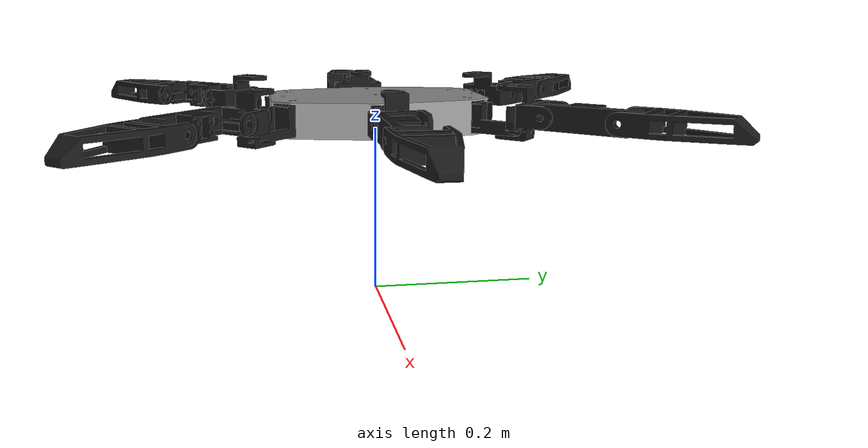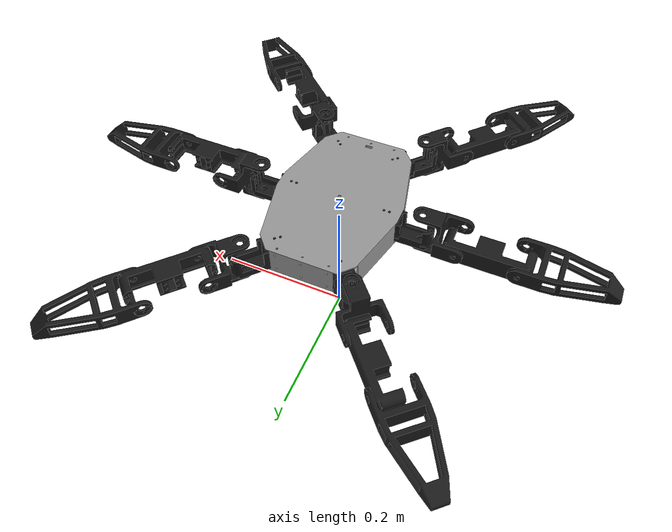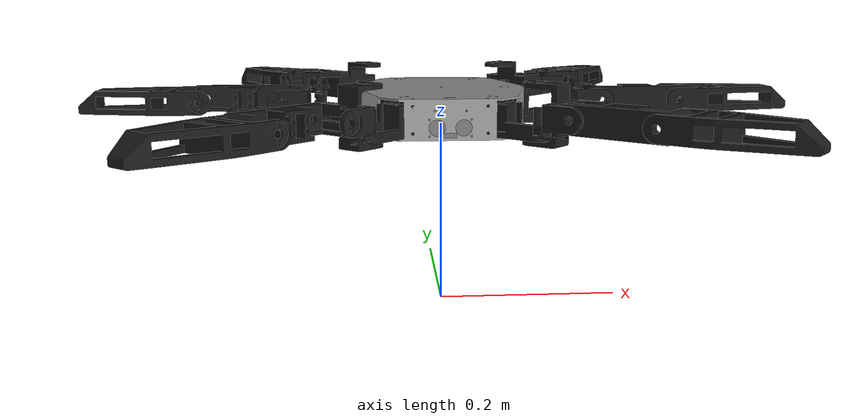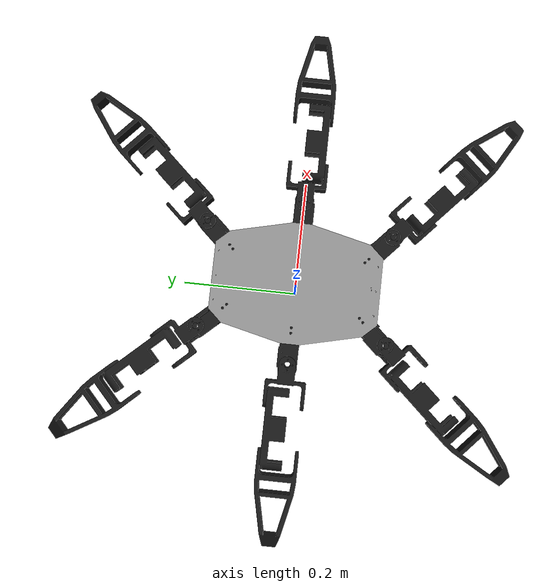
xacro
<?xml version="1.0"?>

<robot xmlns:xacro="http://www.ros.org/wiki/xacro" name="spider">

<!-- Constants for robot dimensions -->
<xacro:property name="PI" value="3.1415926535897931"/>
<xacro:property name="scale" value="0.001" />
<xacro:property name="d_x_boite_patte_centre" value="${61.49*scale}" />
<xacro:property name="r_z_boite_patte_ext" value="${47.6*PI/180}" />
<xacro:property name="d_x_boite_patte_ext" value="${38.208*scale}" />
<xacro:property name="d_y_boite_patte_ext" value="${95.665*scale}" />
<xacro:property name="hauteur" value="200"/>

<xacro:property name="d_A_B" value="${58.67*scale}" />
<xacro:property name="d_B_C" value="${53.0*scale}" />
<xacro:property name="d_C_D" value="${84.16*scale}" />

<xacro:macro name="patte" params="nb_patte pos_x pos_y rot_z color">
  <xacro:une_partie_patte name="patte_${nb_patte}A" mesh_name="A" d_z="0" r_z="${PI/2}" col="0.05" color="${color}"/>
  <xacro:joint_fix name1="base_link" name2="patte_${nb_patte}A" d_x="${pos_x}" d_y="${pos_y}" d_z="${hauteur*scale}" r_x="0" r_y="0" r_z="${rot_z}"/>
  <xacro:une_partie_patte name="patte_${nb_patte}B" mesh_name="B" d_z="0" r_z="${PI/2}" col="0.05" color="${color}"/>
  <xacro:joint_rot name1="patte_${nb_patte}A" name2="patte_${nb_patte}B" d_x="${d_A_B}" d_y="0" d_z="0" r_x="0" r_y="0" r_z="0" axe_y="0" axe_z="1"/>

  <xacro:une_partie_patte name="patte_${nb_patte}C" mesh_name="C" d_z="${-27.44*scale}" r_z="${PI/2}" col="0.05" color="${color}"/>
  <xacro:joint_rot name1="patte_${nb_patte}B" name2="patte_${nb_patte}C" d_x="${d_B_C}" d_y="0" d_z="${scale*27.44}" r_x="0" r_y="0" r_z="0" axe_y="-1" axe_z="0"/>

  <xacro:une_partie_patte name="patte_${nb_patte}D" mesh_name="D" d_z="${-27.44*scale}" r_z="${PI/2}" col="0.05" color="${color}"/>
  <xacro:joint_rot name1="patte_${nb_patte}C" name2="patte_${nb_patte}D" d_x="${d_C_D}" d_y="0" d_z="0" r_x="0" r_y="0" r_z="0" axe_y="-1" axe_z="0"/>

</xacro:macro>

<xacro:macro name="une_partie_patte" params="name mesh_name d_z r_z col color">
  <link name="${name}">
      <collision>
        <origin xyz="0 0 ${d_z}" rpy="0 0 ${r_z}"/>
        <geometry>
          <mesh filename="package://description_kumo/meshes/${mesh_name}.obj" scale="${scale} ${scale} ${scale}"/>
        </geometry>
      </collision>

      <visual>
        <origin xyz="0 0 ${d_z}" rpy="0 0 ${r_z}"/>
        <geometry>
          <mesh filename="package://description_kumo/meshes/${mesh_name}.obj" scale="${scale} ${scale} ${scale}"/>
        </geometry>
        <material name="${color}">
          <xacro:if value="${color == 'rouge'}">
            <color rgba="1 0 0 1.0"/>
          </xacro:if>
          <xacro:if value="${color == 'bleu'}">
            <color rgba="0 0 1 1.0"/>
          </xacro:if>
          <xacro:if value="${color == 'noir'}">
            <color rgba="0.1 0.1 0.1 1.0"/>
          </xacro:if>
        </material>
      </visual>
      <inertial>
        <mass value="0.05"/>
		    <inertia ixx="0.0001" ixy="0" ixz="0" iyy="0.0001" iyz="0" izz="0.0001"/>
    </inertial>
    </link>
</xacro:macro>

<xacro:macro name="corps_" params="name mesh_name d_z r_z col">
  <link name="${name}">
      <collision>
        <origin xyz="0 0 ${d_z}" rpy="0 0 ${r_z}"/>
        <geometry>
          <box size="0.1 0.1 0.1"/>
        </geometry>
      </collision>

      <visual>
        <origin xyz="0 0 ${d_z}" rpy="0 0 ${r_z}"/>
        <geometry>
          <mesh filename="package://description_kumo/meshes/${mesh_name}.obj" scale="${scale} ${scale} ${scale}"/>
        </geometry>
        <material name="gris">
          <color rgba="0.6 0.6 0.6 1.0"/>
        </material>
      </visual>
      <inertial>
        <mass value="2"/>
		    <inertia ixx="0.01" ixy="0" ixz="0" iyy="0.01" iyz="0" izz="0.01"/>
    </inertial>
    </link>
</xacro:macro>

<xacro:macro name="joint_rot" params="name1 name2 d_x d_y d_z r_x r_y r_z axe_y axe_z">
  <joint name="joint_${name1}_${name2}" type="revolute">
    <parent link="${name1}"/>
    <child link="${name2}"/>
    <origin xyz = "${d_x} ${d_y} ${d_z}" rpy = "${r_x} ${r_y} ${r_z}"/>
    <axis xyz = "0 ${axe_y} ${axe_z}"/>
    <limit lower="${-PI}" upper="${PI}" effort="100" velocity="1000"/>
  </joint>
</xacro:macro>

  <xacro:macro name = "controlJoint" params="nb_patte joint1 joint2 initialValue">
    <joint name="joint_patte_${nb_patte}${joint1}_patte_${nb_patte}${joint2}">
      <command_interface name="position">
        <param name="min">-3.14</param>
        <param name="max">3.14</param>
      </command_interface>
      <state_interface name="position">
        <param name="initial_value">${initialValue}</param>
      </state_interface>
    </joint>
  </xacro:macro>

  <xacro:macro name = "controlPatte" params="nb_patte">
    <xacro:controlJoint nb_patte="${nb_patte}" joint1 = "A" joint2 = "B" initialValue="0"/>
    <xacro:controlJoint nb_patte="${nb_patte}" joint1 = "B" joint2 = "C" initialValue="0"/>
    <xacro:controlJoint nb_patte="${nb_patte}" joint1 = "C" joint2 = "D" initialValue="0"/>
  </xacro:macro>

<xacro:macro name="joint_fix" params="name1 name2 d_x d_y d_z r_x r_y r_z">
  <joint name="joint_${name1}_${name2}" type="fixed">
    <parent link="${name1}"/>
    <child link="${name2}"/>
    <origin xyz = "${d_x} ${d_y} ${d_z}" rpy = "${r_x} ${r_y} ${r_z}"/>
  </joint>
</xacro:macro>

<xacro:patte nb_patte="1" pos_x="${d_x_boite_patte_ext}" pos_y="${-d_y_boite_patte_ext}" rot_z="${r_z_boite_patte_ext-PI/2}" color="noir"/>
<xacro:patte nb_patte="2" pos_x="${d_x_boite_patte_centre}" pos_y="0.0" rot_z="0.0" color="noir"/>
<xacro:patte nb_patte="3" pos_x="${d_x_boite_patte_ext}" pos_y="${d_y_boite_patte_ext}" rot_z="${r_z_boite_patte_ext}" color="noir"/>
<xacro:patte nb_patte="4" pos_x="${-d_x_boite_patte_ext}" pos_y="${-d_y_boite_patte_ext}" rot_z="${r_z_boite_patte_ext + PI}" color="noir"/>
<xacro:patte nb_patte="5" pos_x="${-d_x_boite_patte_centre}" pos_y="0.0" rot_z="${PI}" color="noir"/>
<xacro:patte nb_patte="6" pos_x="${-d_x_boite_patte_ext}" pos_y="${d_y_boite_patte_ext}" rot_z="${- r_z_boite_patte_ext + PI}" color="noir"/>

  <link name="test"/>
  <xacro:corps_ name="base_link" mesh_name="Boite" d_z="${hauteur*scale}" r_z="0" col="0"/>

  <joint name="fixed" type="fixed">
    <parent link="test"/>
    <child link="base_link"/>
  </joint>

  <gazebo>
    <plugin filename="gz_ros2_control-system" name="gz_ros2_control::GazeboSimROS2ControlPlugin">
      <robot_param>robot_description</robot_param>
      <robot_param_node>robot_state_publisher</robot_param_node>
      <parameters>/home/ilarak/kumo_ws/src/description_kumo/config/joint_controller.yaml</parameters>
    </plugin>
  </gazebo>

  <ros2_control name="fws" type="system">
    <hardware>
      <plugin>gz_ros2_control/GazeboSimSystem</plugin>
    </hardware>
    <xacro:controlPatte nb_patte="1"/>
    <xacro:controlPatte nb_patte="2"/>
    <xacro:controlPatte nb_patte="3"/>
    <xacro:controlPatte nb_patte="4"/>
    <xacro:controlPatte nb_patte="5"/>
    <xacro:controlPatte nb_patte="6"/>
  </ros2_control>

  </robot>
